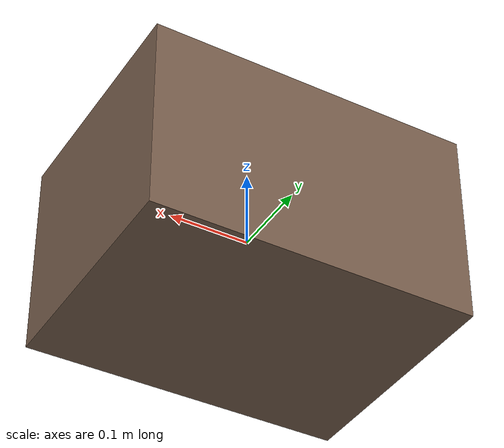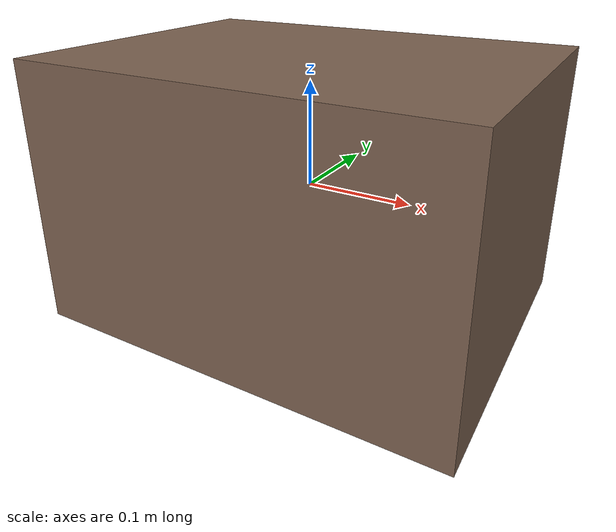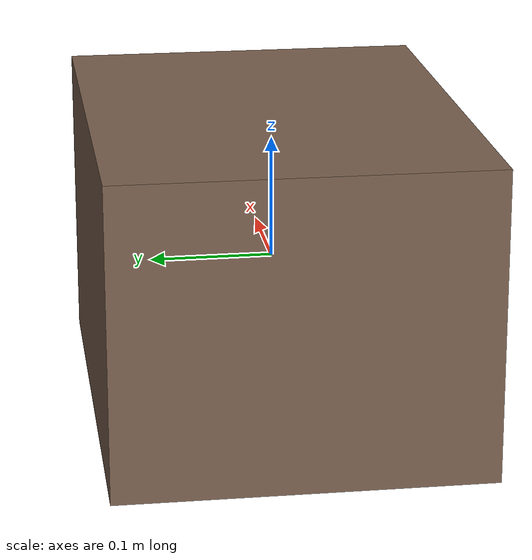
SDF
<?xml version="1.0"?>
<sdf version="1.6">

<model name="box_obstacle">
    <link name="link">
      <inertial>
        <mass>1.0</mass>
        <inertia> <!-- inertias are tricky to compute -->
          <!-- http://gazebosim.org/tutorials?tut=inertia&cat=build_robot -->
          <ixx>0.083</ixx>       <!-- for a box: ixx = 0.083 * mass * (y*y + z*z) -->
          <ixy>0.0</ixy>         <!-- for a box: ixy = 0 -->
          <ixz>0.0</ixz>         <!-- for a box: ixz = 0 -->
          <iyy>0.083</iyy>       <!-- for a box: iyy = 0.083 * mass * (x*x + z*z) -->
          <iyz>0.0</iyz>         <!-- for a box: iyz = 0 -->
          <izz>0.083</izz>       <!-- for a box: izz = 0.083 * mass * (x*x + y*y) -->
        </inertia>
      </inertial>

      <collision name="collision">
        <geometry>
          <box>
            <size>0.4 0.3 0.25</size>
          </box>
        </geometry>
        <surface>
        <contact>
          <!-- Make sure the collision between botcar and any of the obstacles is not considered -->
          <!-- https://classic.gazebosim.org/tutorials?tut=collide_bitmask&cat=physics -->
          <collide_bitmask>0x7FFF</collide_bitmask>
        </contact>
        </surface>
      </collision>

      <visual name="visual_box">
        <geometry>
          <box>
            <size>0.4 0.3 0.25</size>
          </box>
        </geometry>
          <material>
            <!-- Brown color #7b614f   0.482 0.38 0.309-->
            <ambient>0.482 0.38 0.309 1</ambient>
            <diffuse>0.482 0.38 0.309 1</diffuse>
          </material>
      </visual>
    </link>
  </model>
</sdf>
